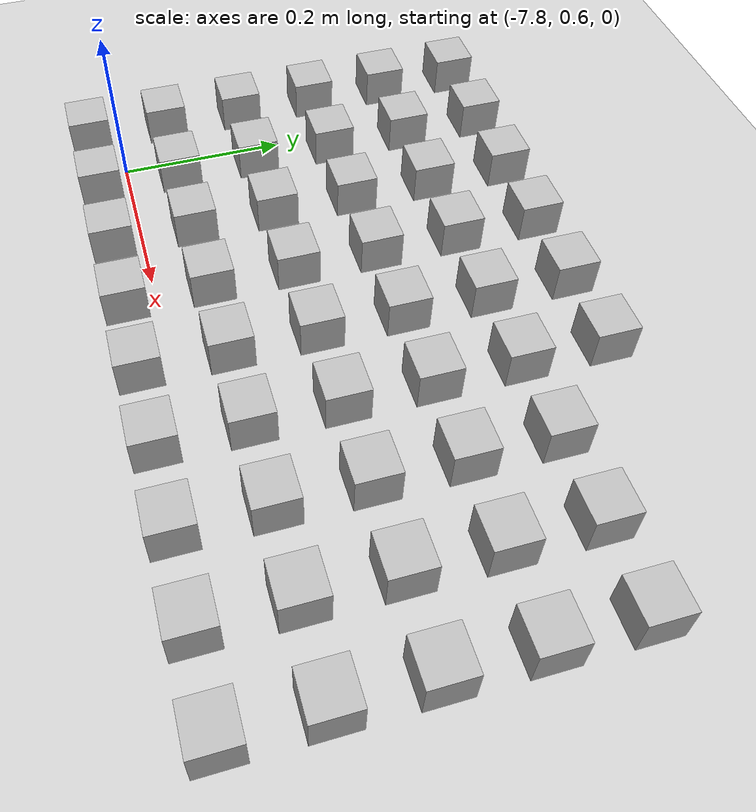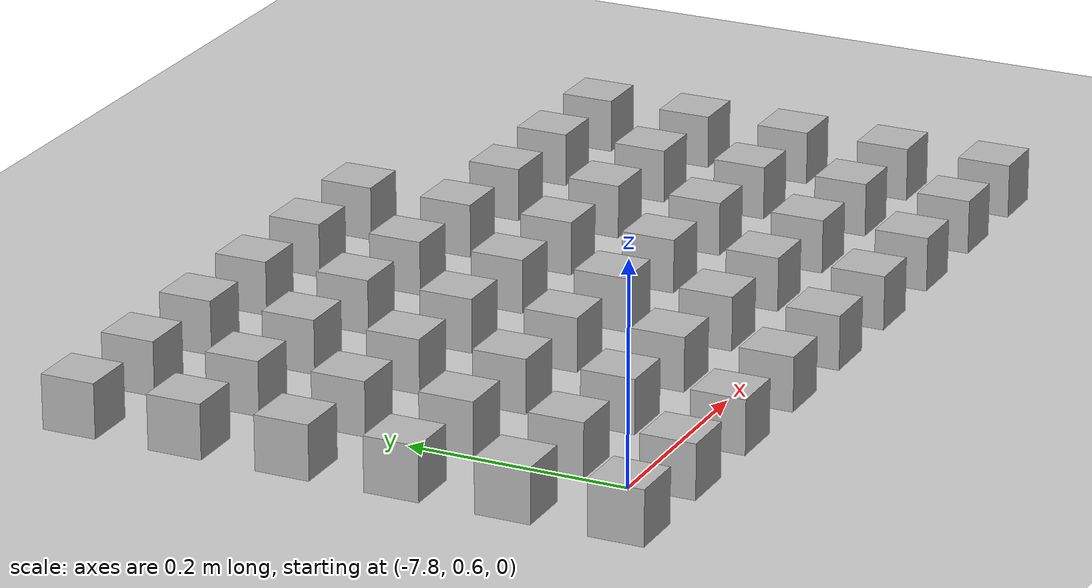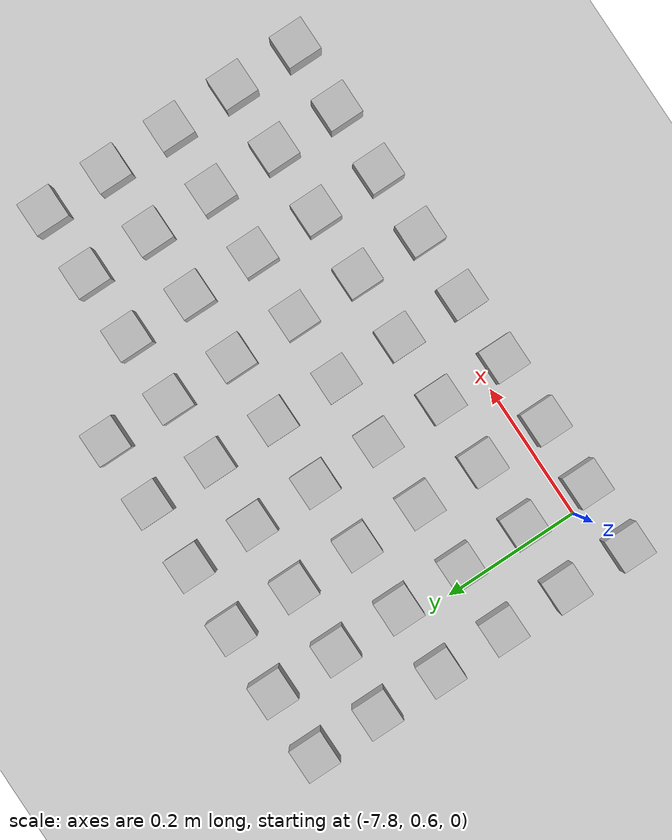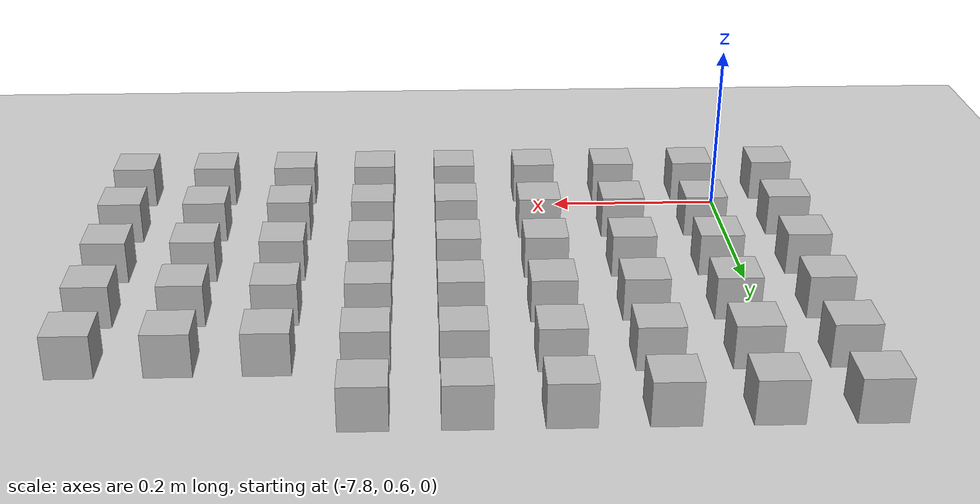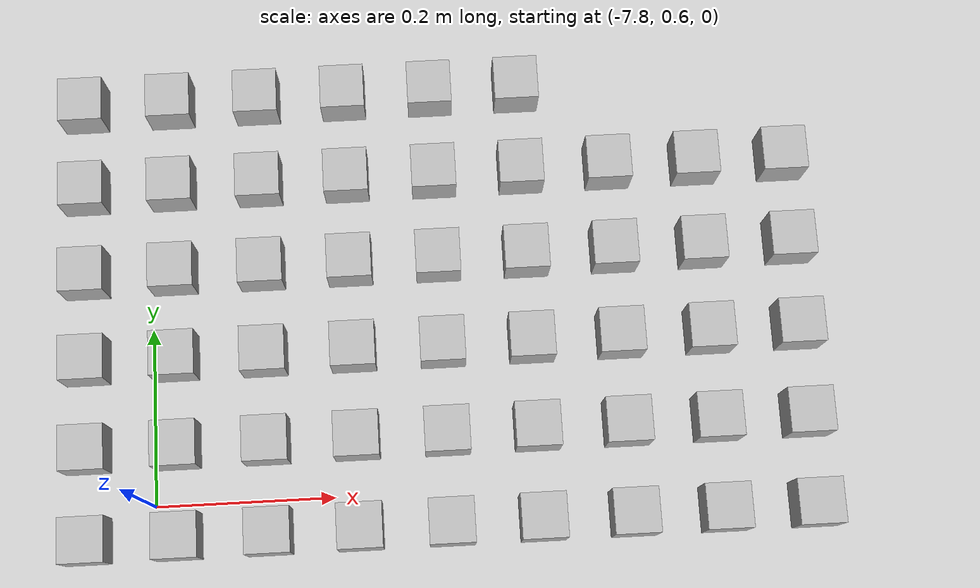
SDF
<sdf version="1.4">
 <world name="default">
  <model name="ground_plane">
   <static>1</static>
   <link name="link">
    <collision name="collision">
     <geometry><plane><normal>0 0 1</normal><size>100 100</size></plane></geometry>
     <surface><friction><ode><mu>100</mu><mu2>50</mu2></ode></friction></surface>
    </collision>
    <visual name="visual">
     <cast_shadows>0</cast_shadows>
     <geometry><plane><normal>0 0 1</normal><size>100 100</size></plane></geometry>
     <material>
      <script><uri>file://media/materials/scripts/gazebo.material</uri><name>Gazebo/Grey</name></script>
     </material>
    </visual>
    <velocity_decay><linear>0</linear><angular>0</angular></velocity_decay>
   </link>
  </model>
  <model name="at7">
   <static>0</static>
   <link name="link">
    <inertial>
     <mass>0.01</mass>
     <inertia><ixx>4e-05</ixx><ixy>0</ixy><ixz>0</ixz><iyy>4e-05</iyy><iyz>0</iyz><izz>4e-05</izz></inertia>
    </inertial>
    <visual name="visual">
     <geometry><box><size>0.05 0.05 0.05</size></box></geometry>
     <material>
      <script>
       <uri>model://at0/materials/scripts</uri>
       <uri>model://at0/materials/textures</uri>
       <name>at0/Diffuse</name>
      </script>
     </material>
    </visual>
    <collision name="collision">
     <geometry><box><size>0.05 0.05 0.05</size></box></geometry>
     <surface><friction><ode><mu>0.8</mu><mu2>0.7</mu2></ode></friction></surface>
    </collision>
    <velocity_decay><linear>0</linear><angular>0</angular></velocity_decay>
   </link>
   <pose>-7.87385 0.56515 0.025 0 -0 0</pose>
  </model>
  <model name="at8">
   <static>0</static>
   <link name="link">
    <inertial>
     <mass>0.01</mass>
     <inertia><ixx>4e-05</ixx><ixy>0</ixy><ixz>0</ixz><iyy>4e-05</iyy><iyz>0</iyz><izz>4e-05</izz></inertia>
    </inertial>
    <visual name="visual">
     <geometry><box><size>0.05 0.05 0.05</size></box></geometry>
     <material>
      <script>
       <uri>model://at0/materials/scripts</uri>
       <uri>model://at0/materials/textures</uri>
       <name>at0/Diffuse</name>
      </script>
     </material>
    </visual>
    <collision name="collision">
     <geometry><box><size>0.05 0.05 0.05</size></box></geometry>
     <surface><friction><ode><mu>0.8</mu><mu2>0.7</mu2></ode></friction></surface>
    </collision>
    <velocity_decay><linear>0</linear><angular>0</angular></velocity_decay>
   </link>
   <pose>-7.77385 0.56515 0.025 0 -0 0</pose>
  </model>
  <model name="at9">
   <static>0</static>
   <link name="link">
    <inertial>
     <mass>0.01</mass>
     <inertia><ixx>4e-05</ixx><ixy>0</ixy><ixz>0</ixz><iyy>4e-05</iyy><iyz>0</iyz><izz>4e-05</izz></inertia>
    </inertial>
    <visual name="visual">
     <geometry><box><size>0.05 0.05 0.05</size></box></geometry>
     <material>
      <script>
       <uri>model://at0/materials/scripts</uri>
       <uri>model://at0/materials/textures</uri>
       <name>at0/Diffuse</name>
      </script>
     </material>
    </visual>
    <collision name="collision">
     <geometry><box><size>0.05 0.05 0.05</size></box></geometry>
     <surface><friction><ode><mu>0.8</mu><mu2>0.7</mu2></ode></friction></surface>
    </collision>
    <velocity_decay><linear>0</linear><angular>0</angular></velocity_decay>
   </link>
   <pose>-7.67385 0.56515 0.025 0 -0 0</pose>
  </model>
  <model name="at10">
   <static>0</static>
   <link name="link">
    <inertial>
     <mass>0.01</mass>
     <inertia><ixx>4e-05</ixx><ixy>0</ixy><ixz>0</ixz><iyy>4e-05</iyy><iyz>0</iyz><izz>4e-05</izz></inertia>
    </inertial>
    <visual name="visual">
     <geometry><box><size>0.05 0.05 0.05</size></box></geometry>
     <material>
      <script>
       <uri>model://at0/materials/scripts</uri>
       <uri>model://at0/materials/textures</uri>
       <name>at0/Diffuse</name>
      </script>
     </material>
    </visual>
    <collision name="collision">
     <geometry><box><size>0.05 0.05 0.05</size></box></geometry>
     <surface><friction><ode><mu>0.8</mu><mu2>0.7</mu2></ode></friction></surface>
    </collision>
    <velocity_decay><linear>0</linear><angular>0</angular></velocity_decay>
   </link>
   <pose>-7.57385 0.56515 0.025 0 -0 0</pose>
  </model>
  <model name="at11">
   <static>0</static>
   <link name="link">
    <inertial>
     <mass>0.01</mass>
     <inertia><ixx>4e-05</ixx><ixy>0</ixy><ixz>0</ixz><iyy>4e-05</iyy><iyz>0</iyz><izz>4e-05</izz></inertia>
    </inertial>
    <visual name="visual">
     <geometry><box><size>0.05 0.05 0.05</size></box></geometry>
     <material>
      <script>
       <uri>model://at0/materials/scripts</uri>
       <uri>model://at0/materials/textures</uri>
       <name>at0/Diffuse</name>
      </script>
     </material>
    </visual>
    <collision name="collision">
     <geometry><box><size>0.05 0.05 0.05</size></box></geometry>
     <surface><friction><ode><mu>0.8</mu><mu2>0.7</mu2></ode></friction></surface>
    </collision>
    <velocity_decay><linear>0</linear><angular>0</angular></velocity_decay>
   </link>
   <pose>-7.47385 0.56515 0.025 0 -0 0</pose>
  </model>
  <model name="at12">
   <static>0</static>
   <link name="link">
    <inertial>
     <mass>0.01</mass>
     <inertia><ixx>4e-05</ixx><ixy>0</ixy><ixz>0</ixz><iyy>4e-05</iyy><iyz>0</iyz><izz>4e-05</izz></inertia>
    </inertial>
    <visual name="visual">
     <geometry><box><size>0.05 0.05 0.05</size></box></geometry>
     <material>
      <script>
       <uri>model://at0/materials/scripts</uri>
       <uri>model://at0/materials/textures</uri>
       <name>at0/Diffuse</name>
      </script>
     </material>
    </visual>
    <collision name="collision">
     <geometry><box><size>0.05 0.05 0.05</size></box></geometry>
     <surface><friction><ode><mu>0.8</mu><mu2>0.7</mu2></ode></friction></surface>
    </collision>
    <velocity_decay><linear>0</linear><angular>0</angular></velocity_decay>
   </link>
   <pose>-7.37385 0.56515 0.025 0 -0 0</pose>
  </model>
  <model name="at13">
   <static>0</static>
   <link name="link">
    <inertial>
     <mass>0.01</mass>
     <inertia><ixx>4e-05</ixx><ixy>0</ixy><ixz>0</ixz><iyy>4e-05</iyy><iyz>0</iyz><izz>4e-05</izz></inertia>
    </inertial>
    <visual name="visual">
     <geometry><box><size>0.05 0.05 0.05</size></box></geometry>
     <material>
      <script>
       <uri>model://at0/materials/scripts</uri>
       <uri>model://at0/materials/textures</uri>
       <name>at0/Diffuse</name>
      </script>
     </material>
    </visual>
    <collision name="collision">
     <geometry><box><size>0.05 0.05 0.05</size></box></geometry>
     <surface><friction><ode><mu>0.8</mu><mu2>0.7</mu2></ode></friction></surface>
    </collision>
    <velocity_decay><linear>0</linear><angular>0</angular></velocity_decay>
   </link>
   <pose>-7.27385 0.56515 0.025 0 -0 0</pose>
  </model>
  <model name="at14">
   <static>0</static>
   <link name="link">
    <inertial>
     <mass>0.01</mass>
     <inertia><ixx>4e-05</ixx><ixy>0</ixy><ixz>0</ixz><iyy>4e-05</iyy><iyz>0</iyz><izz>4e-05</izz></inertia>
    </inertial>
    <visual name="visual">
     <geometry><box><size>0.05 0.05 0.05</size></box></geometry>
     <material>
      <script>
       <uri>model://at0/materials/scripts</uri>
       <uri>model://at0/materials/textures</uri>
       <name>at0/Diffuse</name>
      </script>
     </material>
    </visual>
    <collision name="collision">
     <geometry><box><size>0.05 0.05 0.05</size></box></geometry>
     <surface><friction><ode><mu>0.8</mu><mu2>0.7</mu2></ode></friction></surface>
    </collision>
    <velocity_decay><linear>0</linear><angular>0</angular></velocity_decay>
   </link>
   <pose>-7.17385 0.56515 0.025 0 -0 0</pose>
  </model>
  <model name="at15">
   <static>0</static>
   <link name="link">
    <inertial>
     <mass>0.01</mass>
     <inertia><ixx>4e-05</ixx><ixy>0</ixy><ixz>0</ixz><iyy>4e-05</iyy><iyz>0</iyz><izz>4e-05</izz></inertia>
    </inertial>
    <visual name="visual">
     <geometry><box><size>0.05 0.05 0.05</size></box></geometry>
     <material>
      <script>
       <uri>model://at0/materials/scripts</uri>
       <uri>model://at0/materials/textures</uri>
       <name>at0/Diffuse</name>
      </script>
     </material>
    </visual>
    <collision name="collision">
     <geometry><box><size>0.05 0.05 0.05</size></box></geometry>
     <surface><friction><ode><mu>0.8</mu><mu2>0.7</mu2></ode></friction></surface>
    </collision>
    <velocity_decay><linear>0</linear><angular>0</angular></velocity_decay>
   </link>
   <pose>-7.07385 0.56515 0.025 0 -0 0</pose>
  </model>
  <model name="at23">
   <static>0</static>
   <link name="link">
    <inertial>
     <mass>0.01</mass>
     <inertia><ixx>4e-05</ixx><ixy>0</ixy><ixz>0</ixz><iyy>4e-05</iyy><iyz>0</iyz><izz>4e-05</izz></inertia>
    </inertial>
    <visual name="visual">
     <geometry><box><size>0.05 0.05 0.05</size></box></geometry>
     <material>
      <script>
       <uri>model://at0/materials/scripts</uri>
       <uri>model://at0/materials/textures</uri>
       <name>at0/Diffuse</name>
      </script>
     </material>
    </visual>
    <collision name="collision">
     <geometry><box><size>0.05 0.05 0.05</size></box></geometry>
     <surface><friction><ode><mu>0.8</mu><mu2>0.7</mu2></ode></friction></surface>
    </collision>
    <velocity_decay><linear>0</linear><angular>0</angular></velocity_decay>
   </link>
   <pose>-7.87385 0.66515 0.025 0 -0 0</pose>
  </model>
  <model name="at24">
   <static>0</static>
   <link name="link">
    <inertial>
     <mass>0.01</mass>
     <inertia><ixx>4e-05</ixx><ixy>0</ixy><ixz>0</ixz><iyy>4e-05</iyy><iyz>0</iyz><izz>4e-05</izz></inertia>
    </inertial>
    <visual name="visual">
     <geometry><box><size>0.05 0.05 0.05</size></box></geometry>
     <material>
      <script>
       <uri>model://at0/materials/scripts</uri>
       <uri>model://at0/materials/textures</uri>
       <name>at0/Diffuse</name>
      </script>
     </material>
    </visual>
    <collision name="collision">
     <geometry><box><size>0.05 0.05 0.05</size></box></geometry>
     <surface><friction><ode><mu>0.8</mu><mu2>0.7</mu2></ode></friction></surface>
    </collision>
    <velocity_decay><linear>0</linear><angular>0</angular></velocity_decay>
   </link>
   <pose>-7.77385 0.66515 0.025 0 -0 0</pose>
  </model>
  <model name="at25">
   <static>0</static>
   <link name="link">
    <inertial>
     <mass>0.01</mass>
     <inertia><ixx>4e-05</ixx><ixy>0</ixy><ixz>0</ixz><iyy>4e-05</iyy><iyz>0</iyz><izz>4e-05</izz></inertia>
    </inertial>
    <visual name="visual">
     <geometry><box><size>0.05 0.05 0.05</size></box></geometry>
     <material>
      <script>
       <uri>model://at0/materials/scripts</uri>
       <uri>model://at0/materials/textures</uri>
       <name>at0/Diffuse</name>
      </script>
     </material>
    </visual>
    <collision name="collision">
     <geometry><box><size>0.05 0.05 0.05</size></box></geometry>
     <surface><friction><ode><mu>0.8</mu><mu2>0.7</mu2></ode></friction></surface>
    </collision>
    <velocity_decay><linear>0</linear><angular>0</angular></velocity_decay>
   </link>
   <pose>-7.67385 0.66515 0.025 0 -0 0</pose>
  </model>
  <model name="at26">
   <static>0</static>
   <link name="link">
    <inertial>
     <mass>0.01</mass>
     <inertia><ixx>4e-05</ixx><ixy>0</ixy><ixz>0</ixz><iyy>4e-05</iyy><iyz>0</iyz><izz>4e-05</izz></inertia>
    </inertial>
    <visual name="visual">
     <geometry><box><size>0.05 0.05 0.05</size></box></geometry>
     <material>
      <script>
       <uri>model://at0/materials/scripts</uri>
       <uri>model://at0/materials/textures</uri>
       <name>at0/Diffuse</name>
      </script>
     </material>
    </visual>
    <collision name="collision">
     <geometry><box><size>0.05 0.05 0.05</size></box></geometry>
     <surface><friction><ode><mu>0.8</mu><mu2>0.7</mu2></ode></friction></surface>
    </collision>
    <velocity_decay><linear>0</linear><angular>0</angular></velocity_decay>
   </link>
   <pose>-7.57385 0.66515 0.025 0 -0 0</pose>
  </model>
  <model name="at27">
   <static>0</static>
   <link name="link">
    <inertial>
     <mass>0.01</mass>
     <inertia><ixx>4e-05</ixx><ixy>0</ixy><ixz>0</ixz><iyy>4e-05</iyy><iyz>0</iyz><izz>4e-05</izz></inertia>
    </inertial>
    <visual name="visual">
     <geometry><box><size>0.05 0.05 0.05</size></box></geometry>
     <material>
      <script>
       <uri>model://at0/materials/scripts</uri>
       <uri>model://at0/materials/textures</uri>
       <name>at0/Diffuse</name>
      </script>
     </material>
    </visual>
    <collision name="collision">
     <geometry><box><size>0.05 0.05 0.05</size></box></geometry>
     <surface><friction><ode><mu>0.8</mu><mu2>0.7</mu2></ode></friction></surface>
    </collision>
    <velocity_decay><linear>0</linear><angular>0</angular></velocity_decay>
   </link>
   <pose>-7.47385 0.66515 0.025 0 -0 0</pose>
  </model>
  <model name="at28">
   <static>0</static>
   <link name="link">
    <inertial>
     <mass>0.01</mass>
     <inertia><ixx>4e-05</ixx><ixy>0</ixy><ixz>0</ixz><iyy>4e-05</iyy><iyz>0</iyz><izz>4e-05</izz></inertia>
    </inertial>
    <visual name="visual">
     <geometry><box><size>0.05 0.05 0.05</size></box></geometry>
     <material>
      <script>
       <uri>model://at0/materials/scripts</uri>
       <uri>model://at0/materials/textures</uri>
       <name>at0/Diffuse</name>
      </script>
     </material>
    </visual>
    <collision name="collision">
     <geometry><box><size>0.05 0.05 0.05</size></box></geometry>
     <surface><friction><ode><mu>0.8</mu><mu2>0.7</mu2></ode></friction></surface>
    </collision>
    <velocity_decay><linear>0</linear><angular>0</angular></velocity_decay>
   </link>
   <pose>-7.37385 0.66515 0.025 0 -0 0</pose>
  </model>
  <model name="at29">
   <static>0</static>
   <link name="link">
    <inertial>
     <mass>0.01</mass>
     <inertia><ixx>4e-05</ixx><ixy>0</ixy><ixz>0</ixz><iyy>4e-05</iyy><iyz>0</iyz><izz>4e-05</izz></inertia>
    </inertial>
    <visual name="visual">
     <geometry><box><size>0.05 0.05 0.05</size></box></geometry>
     <material>
      <script>
       <uri>model://at0/materials/scripts</uri>
       <uri>model://at0/materials/textures</uri>
       <name>at0/Diffuse</name>
      </script>
     </material>
    </visual>
    <collision name="collision">
     <geometry><box><size>0.05 0.05 0.05</size></box></geometry>
     <surface><friction><ode><mu>0.8</mu><mu2>0.7</mu2></ode></friction></surface>
    </collision>
    <velocity_decay><linear>0</linear><angular>0</angular></velocity_decay>
   </link>
   <pose>-7.27385 0.66515 0.025 0 -0 0</pose>
  </model>
  <model name="at30">
   <static>0</static>
   <link name="link">
    <inertial>
     <mass>0.01</mass>
     <inertia><ixx>4e-05</ixx><ixy>0</ixy><ixz>0</ixz><iyy>4e-05</iyy><iyz>0</iyz><izz>4e-05</izz></inertia>
    </inertial>
    <visual name="visual">
     <geometry><box><size>0.05 0.05 0.05</size></box></geometry>
     <material>
      <script>
       <uri>model://at0/materials/scripts</uri>
       <uri>model://at0/materials/textures</uri>
       <name>at0/Diffuse</name>
      </script>
     </material>
    </visual>
    <collision name="collision">
     <geometry><box><size>0.05 0.05 0.05</size></box></geometry>
     <surface><friction><ode><mu>0.8</mu><mu2>0.7</mu2></ode></friction></surface>
    </collision>
    <velocity_decay><linear>0</linear><angular>0</angular></velocity_decay>
   </link>
   <pose>-7.17385 0.66515 0.025 0 -0 0</pose>
  </model>
  <model name="at31">
   <static>0</static>
   <link name="link">
    <inertial>
     <mass>0.01</mass>
     <inertia><ixx>4e-05</ixx><ixy>0</ixy><ixz>0</ixz><iyy>4e-05</iyy><iyz>0</iyz><izz>4e-05</izz></inertia>
    </inertial>
    <visual name="visual">
     <geometry><box><size>0.05 0.05 0.05</size></box></geometry>
     <material>
      <script>
       <uri>model://at0/materials/scripts</uri>
       <uri>model://at0/materials/textures</uri>
       <name>at0/Diffuse</name>
      </script>
     </material>
    </visual>
    <collision name="collision">
     <geometry><box><size>0.05 0.05 0.05</size></box></geometry>
     <surface><friction><ode><mu>0.8</mu><mu2>0.7</mu2></ode></friction></surface>
    </collision>
    <velocity_decay><linear>0</linear><angular>0</angular></velocity_decay>
   </link>
   <pose>-7.07385 0.66515 0.025 0 -0 0</pose>
  </model>
  <model name="at39">
   <static>0</static>
   <link name="link">
    <inertial>
     <mass>0.01</mass>
     <inertia><ixx>4e-05</ixx><ixy>0</ixy><ixz>0</ixz><iyy>4e-05</iyy><iyz>0</iyz><izz>4e-05</izz></inertia>
    </inertial>
    <visual name="visual">
     <geometry><box><size>0.05 0.05 0.05</size></box></geometry>
     <material>
      <script>
       <uri>model://at0/materials/scripts</uri>
       <uri>model://at0/materials/textures</uri>
       <name>at0/Diffuse</name>
      </script>
     </material>
    </visual>
    <collision name="collision">
     <geometry><box><size>0.05 0.05 0.05</size></box></geometry>
     <surface><friction><ode><mu>0.8</mu><mu2>0.7</mu2></ode></friction></surface>
    </collision>
    <velocity_decay><linear>0</linear><angular>0</angular></velocity_decay>
   </link>
   <pose>-7.87385 0.76515 0.025 0 -0 0</pose>
  </model>
  <model name="at40">
   <static>0</static>
   <link name="link">
    <inertial>
     <mass>0.01</mass>
     <inertia><ixx>4e-05</ixx><ixy>0</ixy><ixz>0</ixz><iyy>4e-05</iyy><iyz>0</iyz><izz>4e-05</izz></inertia>
    </inertial>
    <visual name="visual">
     <geometry><box><size>0.05 0.05 0.05</size></box></geometry>
     <material>
      <script>
       <uri>model://at0/materials/scripts</uri>
       <uri>model://at0/materials/textures</uri>
       <name>at0/Diffuse</name>
      </script>
     </material>
    </visual>
    <collision name="collision">
     <geometry><box><size>0.05 0.05 0.05</size></box></geometry>
     <surface><friction><ode><mu>0.8</mu><mu2>0.7</mu2></ode></friction></surface>
    </collision>
    <velocity_decay><linear>0</linear><angular>0</angular></velocity_decay>
   </link>
   <pose>-7.77385 0.76515 0.025 0 -0 0</pose>
  </model>
  <model name="at41">
   <static>0</static>
   <link name="link">
    <inertial>
     <mass>0.01</mass>
     <inertia><ixx>4e-05</ixx><ixy>0</ixy><ixz>0</ixz><iyy>4e-05</iyy><iyz>0</iyz><izz>4e-05</izz></inertia>
    </inertial>
    <visual name="visual">
     <geometry><box><size>0.05 0.05 0.05</size></box></geometry>
     <material>
      <script>
       <uri>model://at0/materials/scripts</uri>
       <uri>model://at0/materials/textures</uri>
       <name>at0/Diffuse</name>
      </script>
     </material>
    </visual>
    <collision name="collision">
     <geometry><box><size>0.05 0.05 0.05</size></box></geometry>
     <surface><friction><ode><mu>0.8</mu><mu2>0.7</mu2></ode></friction></surface>
    </collision>
    <velocity_decay><linear>0</linear><angular>0</angular></velocity_decay>
   </link>
   <pose>-7.67385 0.76515 0.025 0 -0 0</pose>
  </model>
  <model name="at42">
   <static>0</static>
   <link name="link">
    <inertial>
     <mass>0.01</mass>
     <inertia><ixx>4e-05</ixx><ixy>0</ixy><ixz>0</ixz><iyy>4e-05</iyy><iyz>0</iyz><izz>4e-05</izz></inertia>
    </inertial>
    <visual name="visual">
     <geometry><box><size>0.05 0.05 0.05</size></box></geometry>
     <material>
      <script>
       <uri>model://at0/materials/scripts</uri>
       <uri>model://at0/materials/textures</uri>
       <name>at0/Diffuse</name>
      </script>
     </material>
    </visual>
    <collision name="collision">
     <geometry><box><size>0.05 0.05 0.05</size></box></geometry>
     <surface><friction><ode><mu>0.8</mu><mu2>0.7</mu2></ode></friction></surface>
    </collision>
    <velocity_decay><linear>0</linear><angular>0</angular></velocity_decay>
   </link>
   <pose>-7.57385 0.76515 0.025 0 -0 0</pose>
  </model>
  <model name="at43">
   <static>0</static>
   <link name="link">
    <inertial>
     <mass>0.01</mass>
     <inertia><ixx>4e-05</ixx><ixy>0</ixy><ixz>0</ixz><iyy>4e-05</iyy><iyz>0</iyz><izz>4e-05</izz></inertia>
    </inertial>
    <visual name="visual">
     <geometry><box><size>0.05 0.05 0.05</size></box></geometry>
     <material>
      <script>
       <uri>model://at0/materials/scripts</uri>
       <uri>model://at0/materials/textures</uri>
       <name>at0/Diffuse</name>
      </script>
     </material>
    </visual>
    <collision name="collision">
     <geometry><box><size>0.05 0.05 0.05</size></box></geometry>
     <surface><friction><ode><mu>0.8</mu><mu2>0.7</mu2></ode></friction></surface>
    </collision>
    <velocity_decay><linear>0</linear><angular>0</angular></velocity_decay>
   </link>
   <pose>-7.47385 0.76515 0.025 0 -0 0</pose>
  </model>
  <model name="at44">
   <static>0</static>
   <link name="link">
    <inertial>
     <mass>0.01</mass>
     <inertia><ixx>4e-05</ixx><ixy>0</ixy><ixz>0</ixz><iyy>4e-05</iyy><iyz>0</iyz><izz>4e-05</izz></inertia>
    </inertial>
    <visual name="visual">
     <geometry><box><size>0.05 0.05 0.05</size></box></geometry>
     <material>
      <script>
       <uri>model://at0/materials/scripts</uri>
       <uri>model://at0/materials/textures</uri>
       <name>at0/Diffuse</name>
      </script>
     </material>
    </visual>
    <collision name="collision">
     <geometry><box><size>0.05 0.05 0.05</size></box></geometry>
     <surface><friction><ode><mu>0.8</mu><mu2>0.7</mu2></ode></friction></surface>
    </collision>
    <velocity_decay><linear>0</linear><angular>0</angular></velocity_decay>
   </link>
   <pose>-7.37385 0.76515 0.025 0 -0 0</pose>
  </model>
  <model name="at45">
   <static>0</static>
   <link name="link">
    <inertial>
     <mass>0.01</mass>
     <inertia><ixx>4e-05</ixx><ixy>0</ixy><ixz>0</ixz><iyy>4e-05</iyy><iyz>0</iyz><izz>4e-05</izz></inertia>
    </inertial>
    <visual name="visual">
     <geometry><box><size>0.05 0.05 0.05</size></box></geometry>
     <material>
      <script>
       <uri>model://at0/materials/scripts</uri>
       <uri>model://at0/materials/textures</uri>
       <name>at0/Diffuse</name>
      </script>
     </material>
    </visual>
    <collision name="collision">
     <geometry><box><size>0.05 0.05 0.05</size></box></geometry>
     <surface><friction><ode><mu>0.8</mu><mu2>0.7</mu2></ode></friction></surface>
    </collision>
    <velocity_decay><linear>0</linear><angular>0</angular></velocity_decay>
   </link>
   <pose>-7.27385 0.76515 0.025 0 -0 0</pose>
  </model>
  <model name="at46">
   <static>0</static>
   <link name="link">
    <inertial>
     <mass>0.01</mass>
     <inertia><ixx>4e-05</ixx><ixy>0</ixy><ixz>0</ixz><iyy>4e-05</iyy><iyz>0</iyz><izz>4e-05</izz></inertia>
    </inertial>
    <visual name="visual">
     <geometry><box><size>0.05 0.05 0.05</size></box></geometry>
     <material>
      <script>
       <uri>model://at0/materials/scripts</uri>
       <uri>model://at0/materials/textures</uri>
       <name>at0/Diffuse</name>
      </script>
     </material>
    </visual>
    <collision name="collision">
     <geometry><box><size>0.05 0.05 0.05</size></box></geometry>
     <surface><friction><ode><mu>0.8</mu><mu2>0.7</mu2></ode></friction></surface>
    </collision>
    <velocity_decay><linear>0</linear><angular>0</angular></velocity_decay>
   </link>
   <pose>-7.17385 0.76515 0.025 0 -0 0</pose>
  </model>
  <model name="at47">
   <static>0</static>
   <link name="link">
    <inertial>
     <mass>0.01</mass>
     <inertia><ixx>4e-05</ixx><ixy>0</ixy><ixz>0</ixz><iyy>4e-05</iyy><iyz>0</iyz><izz>4e-05</izz></inertia>
    </inertial>
    <visual name="visual">
     <geometry><box><size>0.05 0.05 0.05</size></box></geometry>
     <material>
      <script>
       <uri>model://at0/materials/scripts</uri>
       <uri>model://at0/materials/textures</uri>
       <name>at0/Diffuse</name>
      </script>
     </material>
    </visual>
    <collision name="collision">
     <geometry><box><size>0.05 0.05 0.05</size></box></geometry>
     <surface><friction><ode><mu>0.8</mu><mu2>0.7</mu2></ode></friction></surface>
    </collision>
    <velocity_decay><linear>0</linear><angular>0</angular></velocity_decay>
   </link>
   <pose>-7.07385 0.76515 0.025 0 -0 0</pose>
  </model>
  <model name="at55">
   <static>0</static>
   <link name="link">
    <inertial>
     <mass>0.01</mass>
     <inertia><ixx>4e-05</ixx><ixy>0</ixy><ixz>0</ixz><iyy>4e-05</iyy><iyz>0</iyz><izz>4e-05</izz></inertia>
    </inertial>
    <visual name="visual">
     <geometry><box><size>0.05 0.05 0.05</size></box></geometry>
     <material>
      <script>
       <uri>model://at0/materials/scripts</uri>
       <uri>model://at0/materials/textures</uri>
       <name>at0/Diffuse</name>
      </script>
     </material>
    </visual>
    <collision name="collision">
     <geometry><box><size>0.05 0.05 0.05</size></box></geometry>
     <surface><friction><ode><mu>0.8</mu><mu2>0.7</mu2></ode></friction></surface>
    </collision>
    <velocity_decay><linear>0</linear><angular>0</angular></velocity_decay>
   </link>
   <pose>-7.87385 0.86515 0.025 0 -0 0</pose>
  </model>
  <model name="at56">
   <static>0</static>
   <link name="link">
    <inertial>
     <mass>0.01</mass>
     <inertia><ixx>4e-05</ixx><ixy>0</ixy><ixz>0</ixz><iyy>4e-05</iyy><iyz>0</iyz><izz>4e-05</izz></inertia>
    </inertial>
    <visual name="visual">
     <geometry><box><size>0.05 0.05 0.05</size></box></geometry>
     <material>
      <script>
       <uri>model://at0/materials/scripts</uri>
       <uri>model://at0/materials/textures</uri>
       <name>at0/Diffuse</name>
      </script>
     </material>
    </visual>
    <collision name="collision">
     <geometry><box><size>0.05 0.05 0.05</size></box></geometry>
     <surface><friction><ode><mu>0.8</mu><mu2>0.7</mu2></ode></friction></surface>
    </collision>
    <velocity_decay><linear>0</linear><angular>0</angular></velocity_decay>
   </link>
   <pose>-7.77385 0.86515 0.025 0 -0 0</pose>
  </model>
  <model name="at57">
   <static>0</static>
   <link name="link">
    <inertial>
     <mass>0.01</mass>
     <inertia><ixx>4e-05</ixx><ixy>0</ixy><ixz>0</ixz><iyy>4e-05</iyy><iyz>0</iyz><izz>4e-05</izz></inertia>
    </inertial>
    <visual name="visual">
     <geometry><box><size>0.05 0.05 0.05</size></box></geometry>
     <material>
      <script>
       <uri>model://at0/materials/scripts</uri>
       <uri>model://at0/materials/textures</uri>
       <name>at0/Diffuse</name>
      </script>
     </material>
    </visual>
    <collision name="collision">
     <geometry><box><size>0.05 0.05 0.05</size></box></geometry>
     <surface><friction><ode><mu>0.8</mu><mu2>0.7</mu2></ode></friction></surface>
    </collision>
    <velocity_decay><linear>0</linear><angular>0</angular></velocity_decay>
   </link>
   <pose>-7.67385 0.86515 0.025 0 -0 0</pose>
  </model>
  <model name="at58">
   <static>0</static>
   <link name="link">
    <inertial>
     <mass>0.01</mass>
     <inertia><ixx>4e-05</ixx><ixy>0</ixy><ixz>0</ixz><iyy>4e-05</iyy><iyz>0</iyz><izz>4e-05</izz></inertia>
    </inertial>
    <visual name="visual">
     <geometry><box><size>0.05 0.05 0.05</size></box></geometry>
     <material>
      <script>
       <uri>model://at0/materials/scripts</uri>
       <uri>model://at0/materials/textures</uri>
       <name>at0/Diffuse</name>
      </script>
     </material>
    </visual>
    <collision name="collision">
     <geometry><box><size>0.05 0.05 0.05</size></box></geometry>
     <surface><friction><ode><mu>0.8</mu><mu2>0.7</mu2></ode></friction></surface>
    </collision>
    <velocity_decay><linear>0</linear><angular>0</angular></velocity_decay>
   </link>
   <pose>-7.57385 0.86515 0.025 0 -0 0</pose>
  </model>
  <model name="at59">
   <static>0</static>
   <link name="link">
    <inertial>
     <mass>0.01</mass>
     <inertia><ixx>4e-05</ixx><ixy>0</ixy><ixz>0</ixz><iyy>4e-05</iyy><iyz>0</iyz><izz>4e-05</izz></inertia>
    </inertial>
    <visual name="visual">
     <geometry><box><size>0.05 0.05 0.05</size></box></geometry>
     <material>
      <script>
       <uri>model://at0/materials/scripts</uri>
       <uri>model://at0/materials/textures</uri>
       <name>at0/Diffuse</name>
      </script>
     </material>
    </visual>
    <collision name="collision">
     <geometry><box><size>0.05 0.05 0.05</size></box></geometry>
     <surface><friction><ode><mu>0.8</mu><mu2>0.7</mu2></ode></friction></surface>
    </collision>
    <velocity_decay><linear>0</linear><angular>0</angular></velocity_decay>
   </link>
   <pose>-7.47385 0.86515 0.025 0 -0 0</pose>
  </model>
  <model name="at60">
   <static>0</static>
   <link name="link">
    <inertial>
     <mass>0.01</mass>
     <inertia><ixx>4e-05</ixx><ixy>0</ixy><ixz>0</ixz><iyy>4e-05</iyy><iyz>0</iyz><izz>4e-05</izz></inertia>
    </inertial>
    <visual name="visual">
     <geometry><box><size>0.05 0.05 0.05</size></box></geometry>
     <material>
      <script>
       <uri>model://at0/materials/scripts</uri>
       <uri>model://at0/materials/textures</uri>
       <name>at0/Diffuse</name>
      </script>
     </material>
    </visual>
    <collision name="collision">
     <geometry><box><size>0.05 0.05 0.05</size></box></geometry>
     <surface><friction><ode><mu>0.8</mu><mu2>0.7</mu2></ode></friction></surface>
    </collision>
    <velocity_decay><linear>0</linear><angular>0</angular></velocity_decay>
   </link>
   <pose>-7.37385 0.86515 0.025 0 -0 0</pose>
  </model>
  <model name="at61">
   <static>0</static>
   <link name="link">
    <inertial>
     <mass>0.01</mass>
     <inertia><ixx>4e-05</ixx><ixy>0</ixy><ixz>0</ixz><iyy>4e-05</iyy><iyz>0</iyz><izz>4e-05</izz></inertia>
    </inertial>
    <visual name="visual">
     <geometry><box><size>0.05 0.05 0.05</size></box></geometry>
     <material>
      <script>
       <uri>model://at0/materials/scripts</uri>
       <uri>model://at0/materials/textures</uri>
       <name>at0/Diffuse</name>
      </script>
     </material>
    </visual>
    <collision name="collision">
     <geometry><box><size>0.05 0.05 0.05</size></box></geometry>
     <surface><friction><ode><mu>0.8</mu><mu2>0.7</mu2></ode></friction></surface>
    </collision>
    <velocity_decay><linear>0</linear><angular>0</angular></velocity_decay>
   </link>
   <pose>-7.27385 0.86515 0.025 0 -0 0</pose>
  </model>
  <model name="at62">
   <static>0</static>
   <link name="link">
    <inertial>
     <mass>0.01</mass>
     <inertia><ixx>4e-05</ixx><ixy>0</ixy><ixz>0</ixz><iyy>4e-05</iyy><iyz>0</iyz><izz>4e-05</izz></inertia>
    </inertial>
    <visual name="visual">
     <geometry><box><size>0.05 0.05 0.05</size></box></geometry>
     <material>
      <script>
       <uri>model://at0/materials/scripts</uri>
       <uri>model://at0/materials/textures</uri>
       <name>at0/Diffuse</name>
      </script>
     </material>
    </visual>
    <collision name="collision">
     <geometry><box><size>0.05 0.05 0.05</size></box></geometry>
     <surface><friction><ode><mu>0.8</mu><mu2>0.7</mu2></ode></friction></surface>
    </collision>
    <velocity_decay><linear>0</linear><angular>0</angular></velocity_decay>
   </link>
   <pose>-7.17385 0.86515 0.025 0 -0 0</pose>
  </model>
  <model name="at63">
   <static>0</static>
   <link name="link">
    <inertial>
     <mass>0.01</mass>
     <inertia><ixx>4e-05</ixx><ixy>0</ixy><ixz>0</ixz><iyy>4e-05</iyy><iyz>0</iyz><izz>4e-05</izz></inertia>
    </inertial>
    <visual name="visual">
     <geometry><box><size>0.05 0.05 0.05</size></box></geometry>
     <material>
      <script>
       <uri>model://at0/materials/scripts</uri>
       <uri>model://at0/materials/textures</uri>
       <name>at0/Diffuse</name>
      </script>
     </material>
    </visual>
    <collision name="collision">
     <geometry><box><size>0.05 0.05 0.05</size></box></geometry>
     <surface><friction><ode><mu>0.8</mu><mu2>0.7</mu2></ode></friction></surface>
    </collision>
    <velocity_decay><linear>0</linear><angular>0</angular></velocity_decay>
   </link>
   <pose>-7.07385 0.86515 0.025 0 -0 0</pose>
  </model>
  <model name="at71">
   <static>0</static>
   <link name="link">
    <inertial>
     <mass>0.01</mass>
     <inertia><ixx>4e-05</ixx><ixy>0</ixy><ixz>0</ixz><iyy>4e-05</iyy><iyz>0</iyz><izz>4e-05</izz></inertia>
    </inertial>
    <visual name="visual">
     <geometry><box><size>0.05 0.05 0.05</size></box></geometry>
     <material>
      <script>
       <uri>model://at0/materials/scripts</uri>
       <uri>model://at0/materials/textures</uri>
       <name>at0/Diffuse</name>
      </script>
     </material>
    </visual>
    <collision name="collision">
     <geometry><box><size>0.05 0.05 0.05</size></box></geometry>
     <surface><friction><ode><mu>0.8</mu><mu2>0.7</mu2></ode></friction></surface>
    </collision>
    <velocity_decay><linear>0</linear><angular>0</angular></velocity_decay>
   </link>
   <pose>-7.87385 0.96515 0.025 0 -0 0</pose>
  </model>
  <model name="at72">
   <static>0</static>
   <link name="link">
    <inertial>
     <mass>0.01</mass>
     <inertia><ixx>4e-05</ixx><ixy>0</ixy><ixz>0</ixz><iyy>4e-05</iyy><iyz>0</iyz><izz>4e-05</izz></inertia>
    </inertial>
    <visual name="visual">
     <geometry><box><size>0.05 0.05 0.05</size></box></geometry>
     <material>
      <script>
       <uri>model://at0/materials/scripts</uri>
       <uri>model://at0/materials/textures</uri>
       <name>at0/Diffuse</name>
      </script>
     </material>
    </visual>
    <collision name="collision">
     <geometry><box><size>0.05 0.05 0.05</size></box></geometry>
     <surface><friction><ode><mu>0.8</mu><mu2>0.7</mu2></ode></friction></surface>
    </collision>
    <velocity_decay><linear>0</linear><angular>0</angular></velocity_decay>
   </link>
   <pose>-7.77385 0.96515 0.025 0 -0 0</pose>
  </model>
  <model name="at73">
   <static>0</static>
   <link name="link">
    <inertial>
     <mass>0.01</mass>
     <inertia><ixx>4e-05</ixx><ixy>0</ixy><ixz>0</ixz><iyy>4e-05</iyy><iyz>0</iyz><izz>4e-05</izz></inertia>
    </inertial>
    <visual name="visual">
     <geometry><box><size>0.05 0.05 0.05</size></box></geometry>
     <material>
      <script>
       <uri>model://at0/materials/scripts</uri>
       <uri>model://at0/materials/textures</uri>
       <name>at0/Diffuse</name>
      </script>
     </material>
    </visual>
    <collision name="collision">
     <geometry><box><size>0.05 0.05 0.05</size></box></geometry>
     <surface><friction><ode><mu>0.8</mu><mu2>0.7</mu2></ode></friction></surface>
    </collision>
    <velocity_decay><linear>0</linear><angular>0</angular></velocity_decay>
   </link>
   <pose>-7.67385 0.96515 0.025 0 -0 0</pose>
  </model>
  <model name="at74">
   <static>0</static>
   <link name="link">
    <inertial>
     <mass>0.01</mass>
     <inertia><ixx>4e-05</ixx><ixy>0</ixy><ixz>0</ixz><iyy>4e-05</iyy><iyz>0</iyz><izz>4e-05</izz></inertia>
    </inertial>
    <visual name="visual">
     <geometry><box><size>0.05 0.05 0.05</size></box></geometry>
     <material>
      <script>
       <uri>model://at0/materials/scripts</uri>
       <uri>model://at0/materials/textures</uri>
       <name>at0/Diffuse</name>
      </script>
     </material>
    </visual>
    <collision name="collision">
     <geometry><box><size>0.05 0.05 0.05</size></box></geometry>
     <surface><friction><ode><mu>0.8</mu><mu2>0.7</mu2></ode></friction></surface>
    </collision>
    <velocity_decay><linear>0</linear><angular>0</angular></velocity_decay>
   </link>
   <pose>-7.57385 0.96515 0.025 0 -0 0</pose>
  </model>
  <model name="at75">
   <static>0</static>
   <link name="link">
    <inertial>
     <mass>0.01</mass>
     <inertia><ixx>4e-05</ixx><ixy>0</ixy><ixz>0</ixz><iyy>4e-05</iyy><iyz>0</iyz><izz>4e-05</izz></inertia>
    </inertial>
    <visual name="visual">
     <geometry><box><size>0.05 0.05 0.05</size></box></geometry>
     <material>
      <script>
       <uri>model://at0/materials/scripts</uri>
       <uri>model://at0/materials/textures</uri>
       <name>at0/Diffuse</name>
      </script>
     </material>
    </visual>
    <collision name="collision">
     <geometry><box><size>0.05 0.05 0.05</size></box></geometry>
     <surface><friction><ode><mu>0.8</mu><mu2>0.7</mu2></ode></friction></surface>
    </collision>
    <velocity_decay><linear>0</linear><angular>0</angular></velocity_decay>
   </link>
   <pose>-7.47385 0.96515 0.025 0 -0 0</pose>
  </model>
  <model name="at76">
   <static>0</static>
   <link name="link">
    <inertial>
     <mass>0.01</mass>
     <inertia><ixx>4e-05</ixx><ixy>0</ixy><ixz>0</ixz><iyy>4e-05</iyy><iyz>0</iyz><izz>4e-05</izz></inertia>
    </inertial>
    <visual name="visual">
     <geometry><box><size>0.05 0.05 0.05</size></box></geometry>
     <material>
      <script>
       <uri>model://at0/materials/scripts</uri>
       <uri>model://at0/materials/textures</uri>
       <name>at0/Diffuse</name>
      </script>
     </material>
    </visual>
    <collision name="collision">
     <geometry><box><size>0.05 0.05 0.05</size></box></geometry>
     <surface><friction><ode><mu>0.8</mu><mu2>0.7</mu2></ode></friction></surface>
    </collision>
    <velocity_decay><linear>0</linear><angular>0</angular></velocity_decay>
   </link>
   <pose>-7.37385 0.96515 0.025 0 -0 0</pose>
  </model>
  <model name="at77">
   <static>0</static>
   <link name="link">
    <inertial>
     <mass>0.01</mass>
     <inertia><ixx>4e-05</ixx><ixy>0</ixy><ixz>0</ixz><iyy>4e-05</iyy><iyz>0</iyz><izz>4e-05</izz></inertia>
    </inertial>
    <visual name="visual">
     <geometry><box><size>0.05 0.05 0.05</size></box></geometry>
     <material>
      <script>
       <uri>model://at0/materials/scripts</uri>
       <uri>model://at0/materials/textures</uri>
       <name>at0/Diffuse</name>
      </script>
     </material>
    </visual>
    <collision name="collision">
     <geometry><box><size>0.05 0.05 0.05</size></box></geometry>
     <surface><friction><ode><mu>0.8</mu><mu2>0.7</mu2></ode></friction></surface>
    </collision>
    <velocity_decay><linear>0</linear><angular>0</angular></velocity_decay>
   </link>
   <pose>-7.27385 0.96515 0.025 0 -0 0</pose>
  </model>
  <model name="at78">
   <static>0</static>
   <link name="link">
    <inertial>
     <mass>0.01</mass>
     <inertia><ixx>4e-05</ixx><ixy>0</ixy><ixz>0</ixz><iyy>4e-05</iyy><iyz>0</iyz><izz>4e-05</izz></inertia>
    </inertial>
    <visual name="visual">
     <geometry><box><size>0.05 0.05 0.05</size></box></geometry>
     <material>
      <script>
       <uri>model://at0/materials/scripts</uri>
       <uri>model://at0/materials/textures</uri>
       <name>at0/Diffuse</name>
      </script>
     </material>
    </visual>
    <collision name="collision">
     <geometry><box><size>0.05 0.05 0.05</size></box></geometry>
     <surface><friction><ode><mu>0.8</mu><mu2>0.7</mu2></ode></friction></surface>
    </collision>
    <velocity_decay><linear>0</linear><angular>0</angular></velocity_decay>
   </link>
   <pose>-7.17385 0.96515 0.025 0 -0 0</pose>
  </model>
  <model name="at79">
   <static>0</static>
   <link name="link">
    <inertial>
     <mass>0.01</mass>
     <inertia><ixx>4e-05</ixx><ixy>0</ixy><ixz>0</ixz><iyy>4e-05</iyy><iyz>0</iyz><izz>4e-05</izz></inertia>
    </inertial>
    <visual name="visual">
     <geometry><box><size>0.05 0.05 0.05</size></box></geometry>
     <material>
      <script>
       <uri>model://at0/materials/scripts</uri>
       <uri>model://at0/materials/textures</uri>
       <name>at0/Diffuse</name>
      </script>
     </material>
    </visual>
    <collision name="collision">
     <geometry><box><size>0.05 0.05 0.05</size></box></geometry>
     <surface><friction><ode><mu>0.8</mu><mu2>0.7</mu2></ode></friction></surface>
    </collision>
    <velocity_decay><linear>0</linear><angular>0</angular></velocity_decay>
   </link>
   <pose>-7.07385 0.96515 0.025 0 -0 0</pose>
  </model>
  <model name="at87">
   <static>0</static>
   <link name="link">
    <inertial>
     <mass>0.01</mass>
     <inertia><ixx>4e-05</ixx><ixy>0</ixy><ixz>0</ixz><iyy>4e-05</iyy><iyz>0</iyz><izz>4e-05</izz></inertia>
    </inertial>
    <visual name="visual">
     <geometry><box><size>0.05 0.05 0.05</size></box></geometry>
     <material>
      <script>
       <uri>model://at0/materials/scripts</uri>
       <uri>model://at0/materials/textures</uri>
       <name>at0/Diffuse</name>
      </script>
     </material>
    </visual>
    <collision name="collision">
     <geometry><box><size>0.05 0.05 0.05</size></box></geometry>
     <surface><friction><ode><mu>0.8</mu><mu2>0.7</mu2></ode></friction></surface>
    </collision>
    <velocity_decay><linear>0</linear><angular>0</angular></velocity_decay>
   </link>
   <pose>-7.87385 1.06515 0.025 0 -0 0</pose>
  </model>
  <model name="at88">
   <static>0</static>
   <link name="link">
    <inertial>
     <mass>0.01</mass>
     <inertia><ixx>4e-05</ixx><ixy>0</ixy><ixz>0</ixz><iyy>4e-05</iyy><iyz>0</iyz><izz>4e-05</izz></inertia>
    </inertial>
    <visual name="visual">
     <geometry><box><size>0.05 0.05 0.05</size></box></geometry>
     <material>
      <script>
       <uri>model://at0/materials/scripts</uri>
       <uri>model://at0/materials/textures</uri>
       <name>at0/Diffuse</name>
      </script>
     </material>
    </visual>
    <collision name="collision">
     <geometry><box><size>0.05 0.05 0.05</size></box></geometry>
     <surface><friction><ode><mu>0.8</mu><mu2>0.7</mu2></ode></friction></surface>
    </collision>
    <velocity_decay><linear>0</linear><angular>0</angular></velocity_decay>
   </link>
   <pose>-7.77385 1.06515 0.025 0 -0 0</pose>
  </model>
  <model name="at89">
   <static>0</static>
   <link name="link">
    <inertial>
     <mass>0.01</mass>
     <inertia><ixx>4e-05</ixx><ixy>0</ixy><ixz>0</ixz><iyy>4e-05</iyy><iyz>0</iyz><izz>4e-05</izz></inertia>
    </inertial>
    <visual name="visual">
     <geometry><box><size>0.05 0.05 0.05</size></box></geometry>
     <material>
      <script>
       <uri>model://at0/materials/scripts</uri>
       <uri>model://at0/materials/textures</uri>
       <name>at0/Diffuse</name>
      </script>
     </material>
    </visual>
    <collision name="collision">
     <geometry><box><size>0.05 0.05 0.05</size></box></geometry>
     <surface><friction><ode><mu>0.8</mu><mu2>0.7</mu2></ode></friction></surface>
    </collision>
    <velocity_decay><linear>0</linear><angular>0</angular></velocity_decay>
   </link>
   <pose>-7.67385 1.06515 0.025 0 -0 0</pose>
  </model>
  <model name="at90">
   <static>0</static>
   <link name="link">
    <inertial>
     <mass>0.01</mass>
     <inertia><ixx>4e-05</ixx><ixy>0</ixy><ixz>0</ixz><iyy>4e-05</iyy><iyz>0</iyz><izz>4e-05</izz></inertia>
    </inertial>
    <visual name="visual">
     <geometry><box><size>0.05 0.05 0.05</size></box></geometry>
     <material>
      <script>
       <uri>model://at0/materials/scripts</uri>
       <uri>model://at0/materials/textures</uri>
       <name>at0/Diffuse</name>
      </script>
     </material>
    </visual>
    <collision name="collision">
     <geometry><box><size>0.05 0.05 0.05</size></box></geometry>
     <surface><friction><ode><mu>0.8</mu><mu2>0.7</mu2></ode></friction></surface>
    </collision>
    <velocity_decay><linear>0</linear><angular>0</angular></velocity_decay>
   </link>
   <pose>-7.57385 1.06515 0.025 0 -0 0</pose>
  </model>
  <model name="at91">
   <static>0</static>
   <link name="link">
    <inertial>
     <mass>0.01</mass>
     <inertia><ixx>4e-05</ixx><ixy>0</ixy><ixz>0</ixz><iyy>4e-05</iyy><iyz>0</iyz><izz>4e-05</izz></inertia>
    </inertial>
    <visual name="visual">
     <geometry><box><size>0.05 0.05 0.05</size></box></geometry>
     <material>
      <script>
       <uri>model://at0/materials/scripts</uri>
       <uri>model://at0/materials/textures</uri>
       <name>at0/Diffuse</name>
      </script>
     </material>
    </visual>
    <collision name="collision">
     <geometry><box><size>0.05 0.05 0.05</size></box></geometry>
     <surface><friction><ode><mu>0.8</mu><mu2>0.7</mu2></ode></friction></surface>
    </collision>
    <velocity_decay><linear>0</linear><angular>0</angular></velocity_decay>
   </link>
   <pose>-7.47385 1.06515 0.025 0 -0 0</pose>
  </model>
  <model name="at92">
   <static>0</static>
   <link name="link">
    <inertial>
     <mass>0.01</mass>
     <inertia><ixx>4e-05</ixx><ixy>0</ixy><ixz>0</ixz><iyy>4e-05</iyy><iyz>0</iyz><izz>4e-05</izz></inertia>
    </inertial>
    <visual name="visual">
     <geometry><box><size>0.05 0.05 0.05</size></box></geometry>
     <material>
      <script>
       <uri>model://at0/materials/scripts</uri>
       <uri>model://at0/materials/textures</uri>
       <name>at0/Diffuse</name>
      </script>
     </material>
    </visual>
    <collision name="collision">
     <geometry><box><size>0.05 0.05 0.05</size></box></geometry>
     <surface><friction><ode><mu>0.8</mu><mu2>0.7</mu2></ode></friction></surface>
    </collision>
    <velocity_decay><linear>0</linear><angular>0</angular></velocity_decay>
   </link>
   <pose>-7.37385 1.06515 0.025 0 -0 0</pose>
  </model>
 </world>
</sdf>
